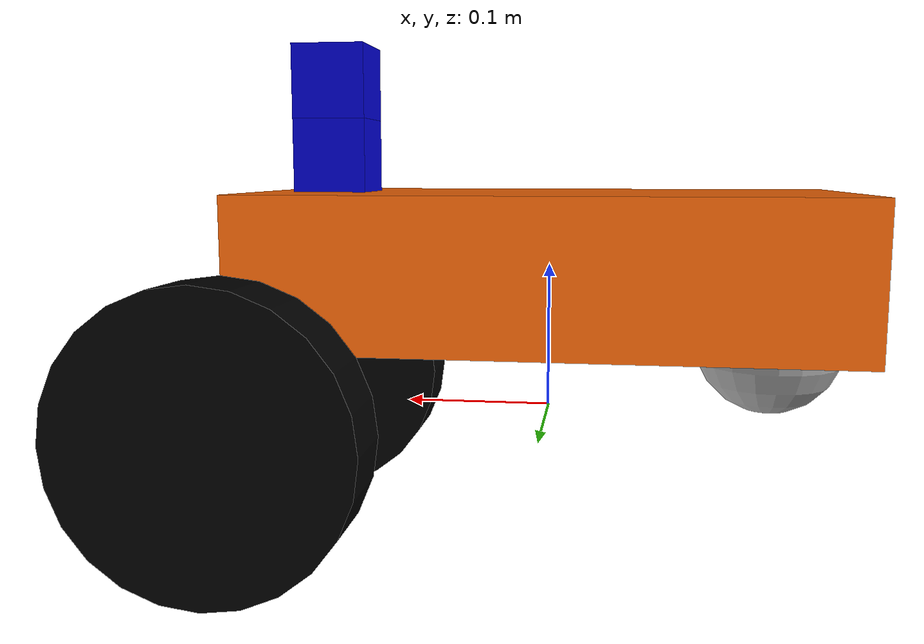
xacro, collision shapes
<?xml version="1.0"?>
<robot name="mybot" xmlns:xacro="http://ros.org/wiki/xacro">

  <xacro:property name="PI" value="3.1415926535897931"/>

  <xacro:property name="chassisHeight" value="0.1"/>
  <xacro:property name="chassisLength" value="0.4"/>
  <xacro:property name="chassisWidth" value="0.2"/>
  <xacro:property name="chassisMass" value="50"/>

  <xacro:property name="casterRadius" value="0.05"/>
  <xacro:property name="casterMass" value="5"/>

  <xacro:property name="wheelWidth" value="0.05"/>
  <xacro:property name="wheelRadius" value="0.1"/>
  <xacro:property name="wheelPos" value="0.2"/>
  <xacro:property name="wheelMass" value="5"/>

  <xacro:property name="cameraSize" value="0.05"/>
  <xacro:property name="cameraMass" value="0.1"/>

  <xacro:include filename="$(find mybot_description)/urdf/mybot.gazebo" />
  <xacro:include filename="$(find mybot_description)/urdf/materials.xacro" />
  <xacro:include filename="$(find mybot_description)/urdf/macros.xacro" />

  <link name="footprint" />

  <joint name="base_joint" type="fixed">
    <parent link="footprint"/>
    <child link="chassis"/>
  </joint>

  <link name="chassis">
    <collision>
      <origin xyz="0 0 ${wheelRadius}" rpy="0 0 0"/>
      <geometry>
	<box size="${chassisLength} ${chassisWidth} ${chassisHeight}"/>
      </geometry>
    </collision>

    <visual>
      <origin xyz="0 0 ${wheelRadius}" rpy="0 0 0"/>
      <geometry>
	      <box size="${chassisLength} ${chassisWidth} ${chassisHeight}"/>
      </geometry>
      <material name="orange"/>
    </visual>

    <inertial>
      <origin xyz="0 0 ${wheelRadius}" rpy="0 0 0"/>
      <mass value="${chassisMass}"/>
      <box_inertia m="${chassisMass}" x="${chassisLength}" y="${chassisWidth}" z="${chassisHeight}"/>
    </inertial>
  </link>

  <joint name="fixed" type="fixed">
    <parent link="chassis"/>
    <child link="caster_wheel"/>
  </joint>

  <link name="caster_wheel">

    <collision>
      <origin xyz="${casterRadius-chassisLength/2} 0 ${casterRadius-chassisHeight+wheelRadius}" rpy="0 0 0"/>
      <geometry>
	<sphere radius="${casterRadius}"/>
      </geometry>
    </collision>

    <visual>
      <origin xyz="${casterRadius-chassisLength/2} 0 ${casterRadius-chassisHeight+wheelRadius}" rpy="0 0 0"/>
      <geometry>
	<sphere radius="${casterRadius}"/>
      </geometry>
    </visual>

    <inertial>
      <origin xyz="${casterRadius-chassisLength/2} 0 ${casterRadius-chassisHeight+wheelRadius}" rpy="0 0 0"/>
      <mass value="${casterMass}"/>
      <sphere_inertia m="${casterMass}" r="${casterRadius}"/>
    </inertial>
  </link>

  <wheel lr="left" tY="-1"/>
  <wheel lr="right" tY="1"/>

  <joint name="camera_joint" type="fixed">
    <origin xyz="${-cameraSize+chassisLength/2} 0 ${cameraSize+wheelRadius+cameraSize/2}" rpy="0 0 0"/>
    <parent link="chassis"/>
    <child link="camera"/>
  </joint>

  <link name="camera">
    <collision>
      <origin xyz="0 0 0" rpy="0 0 0"/>
      <geometry>
	<box size="${cameraSize} ${cameraSize} ${cameraSize}"/>
      </geometry>
    </collision>

    <visual>
      <origin xyz="0 0 0" rpy="0 0 0"/>
      <geometry>
	<box size="${cameraSize} ${cameraSize} ${cameraSize}"/>
      </geometry>
      <material name="blue"/>
    </visual>

    <inertial>
      <mass value="${cameraMass}" />
      <origin xyz="0 0 0" rpy="0 0 0"/>
      <box_inertia m="${cameraMass}" x="${cameraSize}" y="${cameraSize}" z="${cameraSize}" />
    </inertial>
  </link>

  <joint name="sonar_front_joint" type="fixed">
      <axis xyz="0 1 0" />
      <origin rpy="0 0 0" xyz="${chassisLength/2} 0 ${wheelRadius}" />
      <parent link="chassis"/>
      <child link="base_sonar_front"/>
  </joint>
  <link name="base_sonar_front">
      <collision>
        <origin xyz="0 0 0" rpy="0 0 0"/>
        <geometry>
          <box size="0.01 0.01 0.01"/>
        </geometry>
      </collision>
      <visual>
        <origin xyz="0 0 0" rpy="0 0 0"/>
        <geometry>
          <box size="0.01 0.01 0.01"/>
        </geometry>
      </visual>
      <inertial>
        <mass value="1e-5" />
        <origin xyz="0 0 0" rpy="0 0 0"/>
        <inertia ixx="1e-6" ixy="0" ixz="0" iyy="1e-6" iyz="0"      izz="1e-6" />
      </inertial>
  </link>

  <joint name="sonar_back_joint" type="fixed">
      <axis xyz="0 1 0" />
      <origin rpy="0 0 ${PI}" xyz="${-chassisLength/2} 0 ${wheelRadius}" />
      <parent link="chassis"/>
      <child link="base_sonar_back"/>
  </joint>
  <link name="base_sonar_back">
      <collision>
        <origin xyz="0 0 0" rpy="0 0 0"/>
        <geometry>
          <box size="0.01 0.01 0.01"/>
        </geometry>
      </collision>
      <visual>
        <origin xyz="0 0 0" rpy="0 0 0"/>
        <geometry>
          <box size="0.01 0.01 0.01"/>
        </geometry>
      </visual>
      <inertial>
        <mass value="1e-5" />
        <origin xyz="0 0 0" rpy="0 0 0"/>
        <inertia ixx="1e-6" ixy="0" ixz="0" iyy="1e-6" iyz="0"      izz="1e-6" />
      </inertial>
  </link>

  <joint name="hokuyo_joint" type="fixed">
    <origin xyz="${-cameraSize+chassisLength/2} 0 ${cameraSize+wheelRadius+cameraSize/2}" rpy="0 0 0"/>
    <parent link="chassis"/>
    <child link="hokuyo"/>
  </joint>

  <link name="hokuyo">
    <collision>
      <origin xyz="0 0 ${cameraSize}" rpy="0 0 0"/>
      <geometry>
	      <box size="${cameraSize} ${cameraSize} ${cameraSize}"/>
      </geometry>
    </collision>

    <visual>
      <origin xyz="0 0 ${cameraSize}" rpy="0 0 0"/>
        <geometry>
          <mesh>
            <uri>file://~/.gazebo/models/hokuyo/meshes/hokuyo.dae</uri>
          </mesh>
      </geometry>
      <material name="blue"/>
    </visual>

    <inertial>
      <mass value="${cameraMass}" />
      <origin xyz="0 0 0" rpy="0 0 0"/>
      <box_inertia m="${cameraMass}" x="${cameraSize}" y="${cameraSize}" z="${cameraSize}" />
    </inertial>
  </link>

</robot>

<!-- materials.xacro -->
<robot >

  <material name="black">
    <color rgba="0.0 0.0 0.0 1.0"/>
  </material>

  <material name="blue">
    <color rgba="0.0 0.0 0.8 1.0"/>
  </material>

  <material name="green">
    <color rgba="0.0 0.8 0.0 1.0"/>
  </material>

  <material name="grey">
    <color rgba="0.2 0.2 0.2 1.0"/>
  </material>

  <material name="orange">
    <color rgba="${255/255} ${108/255} ${10/255} 1.0"/>
  </material>

  <material name="brown">
    <color rgba="${222/255} ${207/255} ${195/255} 1.0"/>
  </material>

  <material name="red">
    <color rgba="0.8 0.0 0.0 1.0"/>
  </material>

  <material name="white">
    <color rgba="1.0 1.0 1.0 1.0"/>
  </material>

</robot>

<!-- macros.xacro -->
<robot xmlns:xacro="http://ros.org/wiki/xacro">

     <xacro:macro name="cylinder_inertia" params="m r h">
        <inertia  ixx="${m*(3*r*r+h*h)/12}" ixy = "0" ixz = "0"
                  iyy="${m*(3*r*r+h*h)/12}" iyz = "0"
                  izz="${m*r*r/2}" />
      </xacro:macro>

      <xacro:macro name="box_inertia" params="m x y z">
        <inertia  ixx="${m*(y*y+z*z)/12}" ixy = "0" ixz = "0"
                  iyy="${m*(x*x+z*z)/12}" iyz = "0"
                  izz="${m*(x*x+z*z)/12}" />
      </xacro:macro>

      <xacro:macro name="sphere_inertia" params="m r">
        <inertia  ixx="${2*m*r*r/5}" ixy = "0" ixz = "0"
                  iyy="${2*m*r*r/5}" iyz = "0"
                  izz="${2*m*r*r/5}" />
      </xacro:macro>

     <xacro:macro name="wheel" params="lr tY">

       <link name="${lr}_wheel">
        <collision>
          <origin xyz="0 0 0" rpy="0 ${PI/2} ${PI/2}" />
          <geometry>
           <cylinder length="${wheelWidth}" radius="${wheelRadius}"/>
          </geometry>
        </collision>

        <visual>
          <origin xyz="0 0 0" rpy="0 ${PI/2} 0" />
          <geometry>
           <mesh filename="package://bot_description/meshes/wheels/${lr}_tire.stl" scale="0.001 0.001 0.001"/>
          </geometry>
          <material name="black"/>
        </visual>

        <inertial>
          <origin xyz="0 0 0" rpy="0 ${PI/2} ${PI/2}" />
          <mass value="${wheelMass}"/>
          <xacro:cylinder_inertia m="${wheelMass}" r="${wheelRadius}" h="${wheelWidth}"/>
        </inertial>
       </link>

        <gazebo reference="${lr}_wheel">
          <mu1 value="10.0"/>
          <mu2 value="10.0"/>
          <kp  value="10000000.0" />
          <kd  value="1.0" />
          <fdir1 value="1 0 0"/>
          <material>Gazebo/Black</material>
        </gazebo>

       <joint name="${lr}_wheel_hinge" type="continuous">
          <parent link="chassis"/>
          <child link="${lr}_wheel"/>
          <origin xyz="${+wheelPos} ${tY*wheelWidth/2+tY*chassisWidth/2} 0" rpy="0 0 0"/>
          <axis xyz="0 1 0" rpy="0 0 0" />
          <limit effort="100" velocity="100"/>
          <joint_properties damping="0.0" friction="0.0"/>
        </joint>

      <transmission name="${lr}_trans">
        <type>transmission_interface/SimpleTransmission</type>
        <joint name="${lr}_wheel_hinge">
           <hardwareInterface>hardware_interface/EffortJointInterface</hardwareInterface>
        </joint>
        <actuator name="${lr}Motor">
          <hardwareInterface>hardware_interface/EffortJointInterface</hardwareInterface>
          <mechanicalReduction>10</mechanicalReduction>
        </actuator>
      </transmission>

     </xacro:macro>
</robot>
